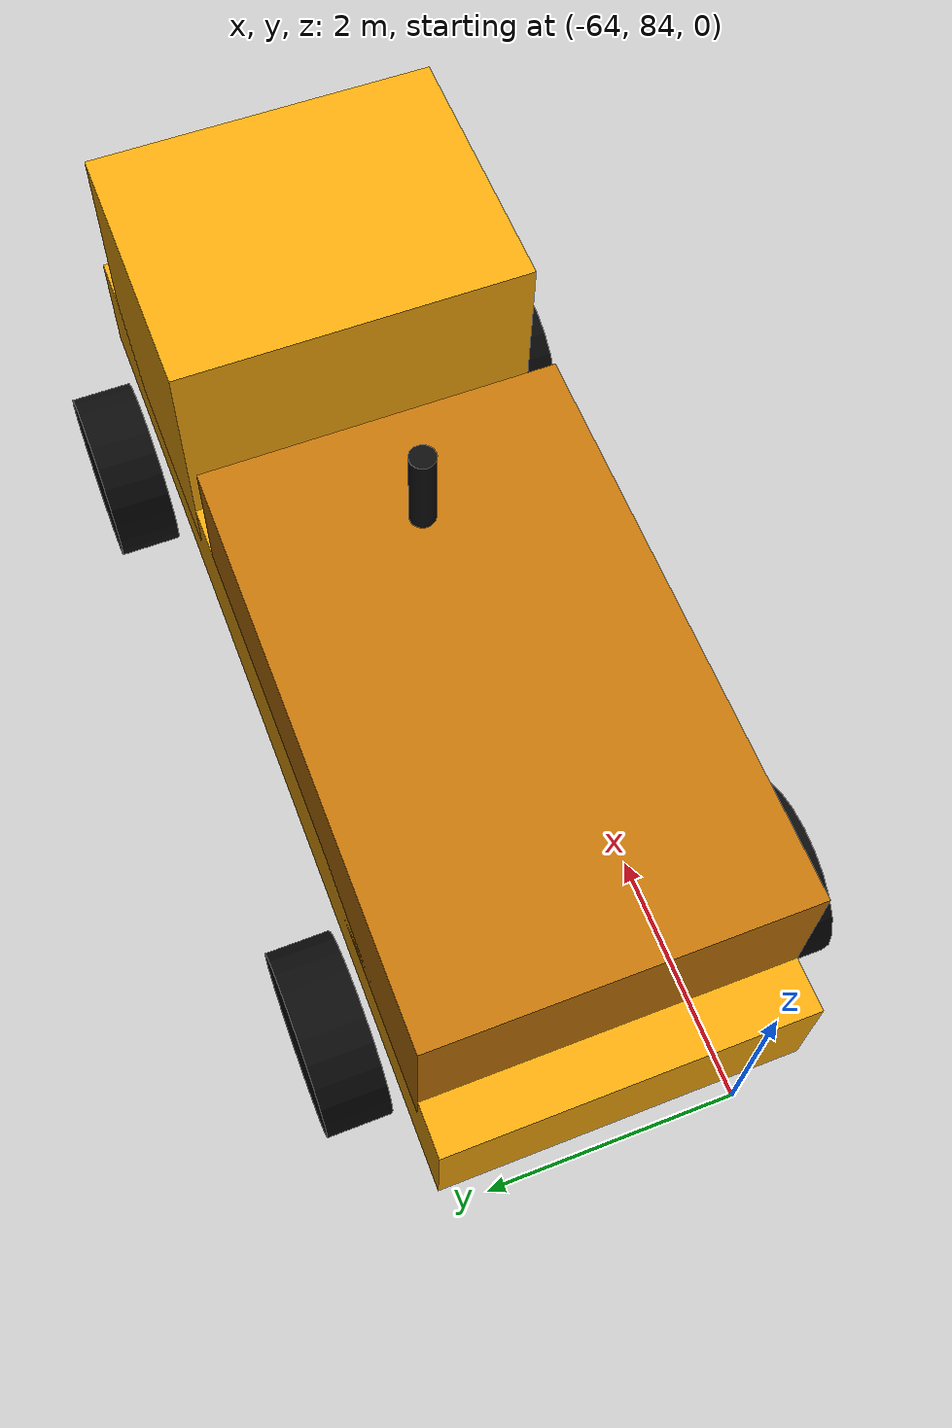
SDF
<sdf version="1.9">
 <world name="sih_mine_world">
  <model name="HEMM_Dumper_01">
   <pose>-60 85.0 0 0 0 0.0</pose>
   <link name="chassis">
    <pose>0 0 1.25 0 0 0</pose>
    <inertial>
     <mass>9000</mass>
     <inertia><ixx>6630</ixx><iyy>48750</iyy><izz>53880</izz><ixy>0</ixy><ixz>0</ixz><iyz>0</iyz></inertia>
    </inertial>
    <collision name="collision">
     <geometry><box><size>8.0 2.8 1.0</size></box></geometry>
     <surface><friction><ode><mu>0.8</mu><mu2>0.05</mu2></ode></friction></surface>
    </collision>
    <visual name="visual">
     <geometry><box><size>8.0 2.8 1.0</size></box></geometry>
     <material><ambient>0.95 0.65 0.05 1</ambient><diffuse>0.95 0.65 0.05 1</diffuse></material>
    </visual>
    <sensor name="imu" type="imu">
     <always_on>1</always_on>
     <update_rate>50</update_rate>
     <visualize>false</visualize>
     <topic>/hemm_01/imu</topic>
    </sensor>
    <sensor name="gps" type="navsat">
     <always_on>1</always_on>
     <update_rate>5</update_rate>
     <topic>/hemm_01/gps</topic>
    </sensor>
   </link>
   <link name="front_body">
    <pose>2.45 0 2.35 0 0 0</pose>
    <inertial>
     <mass>1800</mass>
     <inertia><ixx>1902</ixx><iyy>1452</iyy><izz>1902</izz><ixy>0</ixy><ixz>0</ixz><iyz>0</iyz></inertia>
    </inertial>
    <collision name="collision"><geometry><box><size>2.2 2.8 2.2</size></box></geometry></collision>
    <visual name="visual">
     <geometry><box><size>2.2 2.8 2.2</size></box></geometry>
     <material><ambient>0.95 0.65 0.05 1</ambient><diffuse>0.95 0.65 0.05 1</diffuse></material>
    </visual>
   </link>
   <link name="dump_bed">
    <pose>-1.35 0 2.15 0 0 0</pose>
    <inertial>
     <mass>1400</mass>
     <inertia><ixx>1177</ixx><iyy>2625</iyy><izz>3277</izz><ixy>0</ixy><ixz>0</ixz><iyz>0</iyz></inertia>
    </inertial>
    <collision name="collision"><geometry><box><size>4.5 2.8 1.5</size></box></geometry></collision>
    <visual name="visual">
     <geometry><box><size>4.5 2.8 1.5</size></box></geometry>
     <material><ambient>0.75 0.45 0.03 1</ambient><diffuse>0.75 0.45 0.03 1</diffuse></material>
    </visual>
   </link>
   <link name="sensor_mast">
    <pose>0 0 3.15 0 0 0</pose>
    <inertial>
     <mass>80</mass>
     <inertia><ixx>20</ixx><iyy>20</iyy><izz>20</izz><ixy>0</ixy><ixz>0</ixz><iyz>0</iyz></inertia>
    </inertial>
    <visual name="visual">
     <geometry><cylinder><radius>0.10</radius><length>1.0</length></cylinder></geometry>
     <material><ambient>0.05 0.05 0.05 1</ambient><diffuse>0.05 0.05 0.05 1</diffuse></material>
    </visual>
   </link>
   <link name="left_front_wheel">
    <pose>2.65 1.75 0.70 1.5707963 0 0</pose>
    <inertial>
     <mass>450</mass>
     <inertia><ixx>65</ixx><iyy>65</iyy><izz>110</izz><ixy>0</ixy><ixz>0</ixz><iyz>0</iyz></inertia>
    </inertial>
    <collision name="collision">
     <geometry><cylinder><radius>0.70</radius><length>0.50</length></cylinder></geometry>
     <surface>
      <friction><ode><mu>1.5</mu><mu2>0.05</mu2><fdir1>1 0 0</fdir1></ode></friction>
      <contact><ode><kp>1000000</kp><kd>100</kd><min_depth>0.001</min_depth></ode></contact>
     </surface>
    </collision>
    <visual name="visual">
     <geometry><cylinder><radius>0.70</radius><length>0.50</length></cylinder></geometry>
     <material><ambient>0.04 0.04 0.04 1</ambient><diffuse>0.04 0.04 0.04 1</diffuse></material>
    </visual>
   </link>
   <link name="right_front_wheel">
    <pose>2.65 -1.75 0.70 1.5707963 0 0</pose>
    <inertial>
     <mass>450</mass>
     <inertia><ixx>65</ixx><iyy>65</iyy><izz>110</izz><ixy>0</ixy><ixz>0</ixz><iyz>0</iyz></inertia>
    </inertial>
    <collision name="collision">
     <geometry><cylinder><radius>0.70</radius><length>0.50</length></cylinder></geometry>
     <surface>
      <friction><ode><mu>1.5</mu><mu2>0.05</mu2><fdir1>1 0 0</fdir1></ode></friction>
      <contact><ode><kp>1000000</kp><kd>100</kd><min_depth>0.001</min_depth></ode></contact>
     </surface>
    </collision>
    <visual name="visual">
     <geometry><cylinder><radius>0.70</radius><length>0.50</length></cylinder></geometry>
     <material><ambient>0.04 0.04 0.04 1</ambient><diffuse>0.04 0.04 0.04 1</diffuse></material>
    </visual>
   </link>
   <link name="left_rear_wheel">
    <pose>-2.65 1.75 0.70 1.5707963 0 0</pose>
    <inertial>
     <mass>500</mass>
     <inertia><ixx>72</ixx><iyy>72</iyy><izz>122</izz><ixy>0</ixy><ixz>0</ixz><iyz>0</iyz></inertia>
    </inertial>
    <collision name="collision">
     <geometry><cylinder><radius>0.70</radius><length>0.50</length></cylinder></geometry>
     <surface>
      <friction><ode><mu>1.5</mu><mu2>0.05</mu2><fdir1>1 0 0</fdir1></ode></friction>
      <contact><ode><kp>1000000</kp><kd>100</kd><min_depth>0.001</min_depth></ode></contact>
     </surface>
    </collision>
    <visual name="visual">
     <geometry><cylinder><radius>0.70</radius><length>0.50</length></cylinder></geometry>
     <material><ambient>0.04 0.04 0.04 1</ambient><diffuse>0.04 0.04 0.04 1</diffuse></material>
    </visual>
   </link>
   <link name="right_rear_wheel">
    <pose>-2.65 -1.75 0.70 1.5707963 0 0</pose>
    <inertial>
     <mass>500</mass>
     <inertia><ixx>72</ixx><iyy>72</iyy><izz>122</izz><ixy>0</ixy><ixz>0</ixz><iyz>0</iyz></inertia>
    </inertial>
    <collision name="collision">
     <geometry><cylinder><radius>0.70</radius><length>0.50</length></cylinder></geometry>
     <surface>
      <friction><ode><mu>1.5</mu><mu2>0.05</mu2><fdir1>1 0 0</fdir1></ode></friction>
      <contact><ode><kp>1000000</kp><kd>100</kd><min_depth>0.001</min_depth></ode></contact>
     </surface>
    </collision>
    <visual name="visual">
     <geometry><cylinder><radius>0.70</radius><length>0.50</length></cylinder></geometry>
     <material><ambient>0.04 0.04 0.04 1</ambient><diffuse>0.04 0.04 0.04 1</diffuse></material>
    </visual>
   </link>
   <joint name="front_left_wheel_joint" type="revolute">
    <parent>chassis</parent>
    <child>left_front_wheel</child>
    <axis>
     <xyz expressed_in="__model__">0 1 0</xyz>
     <limit><lower>-1e16</lower><upper>1e16</upper><effort>30000</effort><velocity>20</velocity></limit>
     <dynamics><damping>50</damping><friction>1.0</friction></dynamics>
    </axis>
   </joint>
   <joint name="front_right_wheel_joint" type="revolute">
    <parent>chassis</parent>
    <child>right_front_wheel</child>
    <axis>
     <xyz expressed_in="__model__">0 1 0</xyz>
     <limit><lower>-1e16</lower><upper>1e16</upper><effort>30000</effort><velocity>20</velocity></limit>
     <dynamics><damping>50</damping><friction>1.0</friction></dynamics>
    </axis>
   </joint>
   <joint name="rear_left_wheel_joint" type="revolute">
    <parent>chassis</parent>
    <child>left_rear_wheel</child>
    <axis>
     <xyz expressed_in="__model__">0 1 0</xyz>
     <limit><lower>-1e16</lower><upper>1e16</upper><effort>30000</effort><velocity>20</velocity></limit>
     <dynamics><damping>50</damping><friction>1.0</friction></dynamics>
    </axis>
   </joint>
   <joint name="rear_right_wheel_joint" type="revolute">
    <parent>chassis</parent>
    <child>right_rear_wheel</child>
    <axis>
     <xyz expressed_in="__model__">0 1 0</xyz>
     <limit><lower>-1e16</lower><upper>1e16</upper><effort>30000</effort><velocity>20</velocity></limit>
     <dynamics><damping>50</damping><friction>1.0</friction></dynamics>
    </axis>
   </joint>
   <joint name="front_body_joint" type="fixed"><parent>chassis</parent><child>front_body</child></joint>
   <joint name="dump_bed_joint" type="fixed"><parent>chassis</parent><child>dump_bed</child></joint>
   <joint name="sensor_mast_joint" type="fixed"><parent>chassis</parent><child>sensor_mast</child></joint>
   <plugin filename="gz-sim-diff-drive-system" name="gz::sim::systems::DiffDrive">
    <left_joint>front_left_wheel_joint</left_joint>
    <left_joint>rear_left_wheel_joint</left_joint>
    <right_joint>front_right_wheel_joint</right_joint>
    <right_joint>rear_right_wheel_joint</right_joint>
    <wheel_separation>3.50</wheel_separation>
    <wheel_radius>0.70</wheel_radius>
    <topic>/hemm_01/cmd_vel</topic>
    <odom_topic>/hemm_01/odom</odom_topic>
    <frame_id>hemm_01/odom</frame_id>
    <child_frame_id>hemm_01/base_link</child_frame_id>
    <odom_publish_frequency>30</odom_publish_frequency>
    <max_linear_acceleration>2.0</max_linear_acceleration>
    <min_linear_acceleration>-2.0</min_linear_acceleration>
    <max_angular_acceleration>1.5</max_angular_acceleration>
    <min_angular_acceleration>-1.5</min_angular_acceleration>
   </plugin>
   <link name="lidar_link">
    <pose>4.05 0 0.85 0 0 0</pose>
    <inertial>
     <mass>1.0</mass>
     <inertia><ixx>0.001</ixx><iyy>0.001</iyy><izz>0.001</izz><ixy>0</ixy><ixz>0</ixz><iyz>0</iyz></inertia>
    </inertial>
    <visual name="visual">
     <geometry><cylinder><radius>0.15</radius><length>0.15</length></cylinder></geometry>
     <material><ambient>0.1 0.1 0.1 1</ambient><diffuse>0.1 0.1 0.1 1</diffuse></material>
    </visual>
    <sensor name="lidar" type="gpu_lidar">
     <topic>/hemm_01/scan</topic>
     <update_rate>10</update_rate>
     <ray>
      <scan>
       <horizontal>
        <samples>360</samples>
        <resolution>1</resolution>
        <min_angle>-3.14159265</min_angle>
        <max_angle>3.14159265</max_angle>
       </horizontal>
      </scan>
      <range><min>0.1</min><max>50.0</max><resolution>0.05</resolution></range>
     </ray>
     <always_on>true</always_on>
     <visualize>false</visualize>
    </sensor>
   </link>
   <joint name="lidar_joint" type="fixed"><parent>chassis</parent><child>lidar_link</child></joint>
   <link name="camera_link">
    <pose>3.55 0 2.5 0 0 0</pose>
    <inertial>
     <mass>0.5</mass>
     <inertia><ixx>0.0005</ixx><iyy>0.0005</iyy><izz>0.0005</izz><ixy>0</ixy><ixz>0</ixz><iyz>0</iyz></inertia>
    </inertial>
    <visual name="visual">
     <geometry><box><size>0.15 0.30 0.15</size></box></geometry>
     <material><ambient>0.2 0.2 0.8 1</ambient><diffuse>0.2 0.2 0.8 1</diffuse></material>
    </visual>
    <sensor name="camera" type="camera">
     <topic>/hemm_01/camera/image_raw</topic>
     <update_rate>15</update_rate>
     <camera>
      <horizontal_fov>1.570796</horizontal_fov>
      <image><width>640</width><height>480</height><format>R8G8B8</format></image>
      <clip><near>0.2</near><far>100.0</far></clip>
     </camera>
     <always_on>1</always_on>
     <visualize>false</visualize>
    </sensor>
    <sensor name="depth_camera" type="depth_camera">
     <topic>/hemm_01/depth/image_raw</topic>
     <update_rate>10</update_rate>
     <camera>
      <horizontal_fov>1.396263</horizontal_fov>
      <image><width>320</width><height>240</height><format>R_FLOAT32</format></image>
      <clip><near>0.5</near><far>50.0</far></clip>
     </camera>
     <always_on>1</always_on>
     <visualize>false</visualize>
    </sensor>
   </link>
   <joint name="camera_joint" type="fixed"><parent>chassis</parent><child>camera_link</child></joint>
  </model>
 </world>
</sdf>
